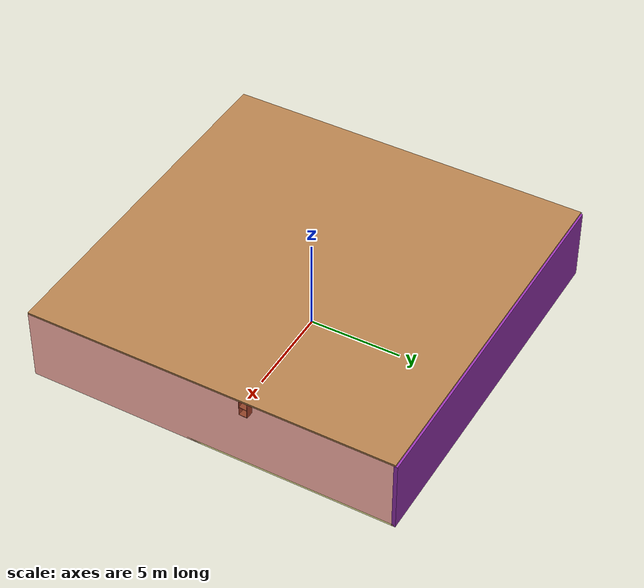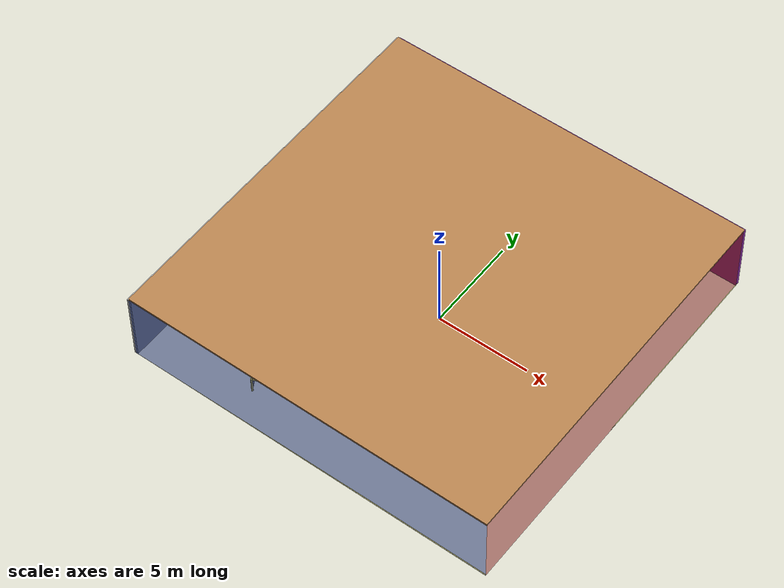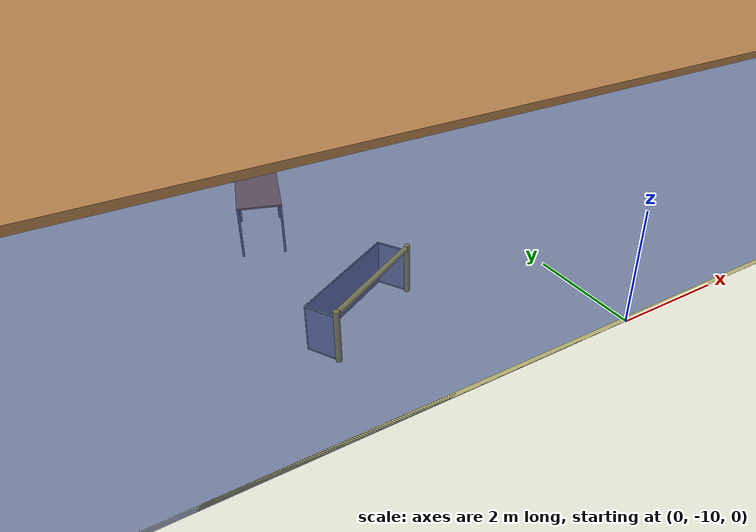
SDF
<sdf version="1.4">
 <world name="default">
  <physics type="ode">
   <max_step_size>0.001</max_step_size>
   <real_time_factor>1</real_time_factor>
   <real_time_update_rate>1000</real_time_update_rate>
   <gravity>0 0 -9.8</gravity>
  </physics>
  <scene><ambient>0.4 0.4 0.4 1</ambient><background>0.7 0.7 0.7 1</background><shadows>1</shadows></scene>
  <model name="Surrounding">
   <static>1</static>
   <link name="Ceiling">
    <collision name="Ceiling_Collision"><geometry><box><size>20 20 0.1</size></box></geometry></collision>
    <visual name="Ceiling_Visual">
     <geometry><box><size>20 20 0.1</size></box></geometry>
     <material>
      <script><uri>file://media/materials/scripts/gazebo.material</uri><name>Gazebo/Wood</name></script>
     </material>
    </visual>
    <pose>0 0 4.05 0 0 0</pose>
   </link>
   <link name="Wall_South">
    <collision name="Wall_South_Collision">
     <geometry><box><size>20 0 4</size></box></geometry>
     <pose>0 0 2 0 -0 0</pose>
    </collision>
    <visual name="Wall_South_Visual">
     <pose>0 0 2 0 -0 0</pose>
     <geometry><box><size>20 0 4</size></box></geometry>
     <material>
      <script><uri>file://media/materials/scripts/gazebo.material</uri><name>Gazebo/BlueTransparent</name></script>
     </material>
    </visual>
    <velocity_decay><linear>0</linear><angular>0</angular></velocity_decay>
    <pose>0 -10 0 0 -0 0</pose>
   </link>
   <link name="Wall_East">
    <collision name="Wall_21_Collision">
     <geometry><box><size>20 0 4</size></box></geometry>
     <pose>0 0 2 0 -0 0</pose>
    </collision>
    <visual name="Wall_21_Visual">
     <pose>0 0 2 0 -0 0</pose>
     <geometry><box><size>20 0 4</size></box></geometry>
     <material>
      <script><uri>file://media/materials/scripts/gazebo.material</uri><name>Gazebo/RedTransparent</name></script>
     </material>
    </visual>
    <velocity_decay><linear>0</linear><angular>0</angular></velocity_decay>
    <pose>10 0 0 0 -0 1.5708</pose>
   </link>
   <link name="Wall_North">
    <collision name="Wall_22_Collision">
     <geometry><box><size>20 0.2 4</size></box></geometry>
     <pose>0 0 2 0 -0 0</pose>
    </collision>
    <visual name="Wall_22_Visual">
     <pose>0 0 2 0 -0 0</pose>
     <geometry><box><size>20 0.2 4</size></box></geometry>
     <material>
      <script><uri>file://media/materials/scripts/gazebo.material</uri><name>Gazebo/Purple</name></script>
     </material>
    </visual>
    <velocity_decay><linear>0</linear><angular>0</angular></velocity_decay>
    <pose>0 10 0 0 -0 0</pose>
   </link>
   <link name="Wall_West">
    <collision name="Wall_23_Collision">
     <geometry><box><size>20 0.2 4</size></box></geometry>
     <pose>0 0 2 0 -0 0</pose>
    </collision>
    <visual name="Wall_23_Visual">
     <pose>0 0 2 0 -0 0</pose>
     <geometry><box><size>20 0.2 4</size></box></geometry>
     <material>
      <script><uri>file://media/materials/scripts/gazebo.material</uri><name>Gazebo/CloudySky</name></script>
     </material>
    </visual>
    <velocity_decay><linear>0</linear><angular>0</angular></velocity_decay>
    <pose>-10 0 0 0 0 -1.5708</pose>
   </link>
   <link name="Ground_link">
    <collision name="collision">
     <pose>0 0 .05 0 -0 0</pose>
     <geometry><box><size>20 20 0.1</size></box></geometry>
    </collision>
    <visual name="visual">
     <pose>0 0 .05 0 -0 0</pose>
     <geometry><box><size>20 20 0.1</size></box></geometry>
     <material>
      <script>
       <uri>file://media/materials/scripts/gazebo.material</uri>
       <name>Gazebo/YellowTransparent</name>
      </script>
     </material>
    </visual>
   </link>
   <static>1</static>
  </model>
  <spherical_coordinates>
   <surface_model>EARTH_WGS84</surface_model>
   <latitude_deg>0</latitude_deg>
   <longitude_deg>0</longitude_deg>
   <elevation>0</elevation>
   <heading_deg>0</heading_deg>
  </spherical_coordinates>
  <light name="lightball_0" type="diffuse">
   <diffuse>0.8 0.8 0.8 1</diffuse>
   <specular>0.2 0.2 0.2 1</specular>
   <attenuation>
    <range>100</range>
    <constant>0.7</constant>
    <linear>0.01</linear>
    <quadratic>0.001</quadratic>
   </attenuation>
   <direction>-0.5 0.1 -0.9</direction>
   <pose>-8.7485365639 6.96695995797 2.57042910393 0 0 0</pose>
  </light>
  <light name="lightball_1" type="diffuse">
   <diffuse>0.8 0.8 0.8 1</diffuse>
   <specular>0.2 0.2 0.2 1</specular>
   <attenuation>
    <range>100</range>
    <constant>0.7</constant>
    <linear>0.01</linear>
    <quadratic>0.001</quadratic>
   </attenuation>
   <direction>-0.5 0.1 -0.9</direction>
   <pose>8.06281182706 6.35495322519 2.47886258745 0 0 0</pose>
  </light>
  <light name="lightball_2" type="diffuse">
   <diffuse>0.8 0.8 0.8 1</diffuse>
   <specular>0.2 0.2 0.2 1</specular>
   <attenuation>
    <range>100</range>
    <constant>0.7</constant>
    <linear>0.01</linear>
    <quadratic>0.001</quadratic>
   </attenuation>
   <direction>-0.5 0.1 -0.9</direction>
   <pose>-1.74514071256 5.94514601653 1.76043744622 0 0 0</pose>
  </light>
  <light name="lightball_3" type="diffuse">
   <diffuse>0.8 0.8 0.8 1</diffuse>
   <specular>0.2 0.2 0.2 1</specular>
   <attenuation>
    <range>100</range>
    <constant>0.7</constant>
    <linear>0.01</linear>
    <quadratic>0.001</quadratic>
   </attenuation>
   <direction>-0.5 0.1 -0.9</direction>
   <pose>6.07313258328 1.77608162339 3.17388197642 0 0 0</pose>
  </light>
  <light name="lightball_4" type="diffuse">
   <diffuse>0.8 0.8 0.8 1</diffuse>
   <specular>0.2 0.2 0.2 1</specular>
   <attenuation>
    <range>100</range>
    <constant>0.7</constant>
    <linear>0.01</linear>
    <quadratic>0.001</quadratic>
   </attenuation>
   <direction>-0.5 0.1 -0.9</direction>
   <pose>-5.91933998854 0.539486157617 1.40543178742 0 0 0</pose>
  </light>
  <light name="lightball_5" type="diffuse">
   <diffuse>0.8 0.8 0.8 1</diffuse>
   <specular>0.2 0.2 0.2 1</specular>
   <attenuation>
    <range>100</range>
    <constant>0.7</constant>
    <linear>0.01</linear>
    <quadratic>0.001</quadratic>
   </attenuation>
   <direction>-0.5 0.1 -0.9</direction>
   <pose>-9.73895984663 4.04395679952 2.1198496472 0 0 0</pose>
  </light>
  <light name="lightball_6" type="diffuse">
   <diffuse>0.8 0.8 0.8 1</diffuse>
   <specular>0.2 0.2 0.2 1</specular>
   <attenuation>
    <range>100</range>
    <constant>0.7</constant>
    <linear>0.01</linear>
    <quadratic>0.001</quadratic>
   </attenuation>
   <direction>-0.5 0.1 -0.9</direction>
   <pose>1.95502215254 -4.8247723984 2.27447532747 0 0 0</pose>
  </light>
  <light name="lightball_7" type="diffuse">
   <diffuse>0.8 0.8 0.8 1</diffuse>
   <specular>0.2 0.2 0.2 1</specular>
   <attenuation>
    <range>100</range>
    <constant>0.7</constant>
    <linear>0.01</linear>
    <quadratic>0.001</quadratic>
   </attenuation>
   <direction>-0.5 0.1 -0.9</direction>
   <pose>-1.78568329815 4.5292170475 1.506739221 0 0 0</pose>
  </light>
  <light name="lightball_8" type="diffuse">
   <diffuse>0.8 0.8 0.8 1</diffuse>
   <specular>0.2 0.2 0.2 1</specular>
   <attenuation>
    <range>100</range>
    <constant>0.7</constant>
    <linear>0.01</linear>
    <quadratic>0.001</quadratic>
   </attenuation>
   <direction>-0.5 0.1 -0.9</direction>
   <pose>1.67706117499 -5.62869687503 1.83516918793 0 0 0</pose>
  </light>
  <light name="lightball_9" type="diffuse">
   <diffuse>0.8 0.8 0.8 1</diffuse>
   <specular>0.2 0.2 0.2 1</specular>
   <attenuation>
    <range>100</range>
    <constant>0.7</constant>
    <linear>0.01</linear>
    <quadratic>0.001</quadratic>
   </attenuation>
   <direction>-0.5 0.1 -0.9</direction>
   <pose>6.70627390634 -0.609291069178 2.80675489375 0 0 0</pose>
  </light>
  <light name="lightball_10" type="diffuse">
   <diffuse>0.8 0.8 0.8 1</diffuse>
   <specular>0.2 0.2 0.2 1</specular>
   <attenuation>
    <range>100</range>
    <constant>0.7</constant>
    <linear>0.01</linear>
    <quadratic>0.001</quadratic>
   </attenuation>
   <direction>-0.5 0.1 -0.9</direction>
   <pose>9.40761773645 -7.72509531616 2.56352714478 0 0 0</pose>
  </light>
  <light name="lightball_11" type="diffuse">
   <diffuse>0.8 0.8 0.8 1</diffuse>
   <specular>0.2 0.2 0.2 1</specular>
   <attenuation>
    <range>100</range>
    <constant>0.7</constant>
    <linear>0.01</linear>
    <quadratic>0.001</quadratic>
   </attenuation>
   <direction>-0.5 0.1 -0.9</direction>
   <pose>-0.0537251295221 -2.86327370115 2.95644051959 0 0 0</pose>
  </light>
  <include>
   <uri>model://robocup_3Dsim_goal</uri>
   <pose>-3.45219184288 -7.9197056727 0 0 0 2.08751032375</pose>
  </include>
  <include><uri>model://table</uri><pose>-3.9464456424 -4.34507998802 0 0 0 1.24886994247</pose></include>
  <include><uri>model://cabinet</uri><pose>-3.32037881402 3.57205139429 0 0 0 2.49869114553</pose></include>
  <include><uri>model://cabinet</uri><pose>7.22535121744 0.429333297894 0 0 0 3.07812504392</pose></include>
 </world>
</sdf>

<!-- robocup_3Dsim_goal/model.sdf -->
<sdf version="1.5">
  <model name="robocup_3d_goal">
    <static>true</static>
    <link name="left_post">
      <pose>0 1.05 0.45 0 0 0</pose>
      <collision name="collision">
        <geometry>
          <cylinder>
            <radius>0.05</radius>
            <length>0.9</length>
          </cylinder>
        </geometry>
      </collision>
      <visual name="visual">
        <geometry>
          <cylinder>
            <radius>0.05</radius>
            <length>0.9</length>
          </cylinder>
        </geometry>
        <material>
          <script>
            <uri>file://media/materials/scripts/gazebo.material</uri>
            <name>Gazebo/ZincYellow</name>
          </script>
        </material>
      </visual>
    </link>
    <link name="left_support_horiz_lower">
      <pose>0.30 1.05 0.01 0 0 0</pose>
      <collision name="collision">
        <geometry>
          <box>
            <size>0.50 0.02 0.02</size>
          </box>
        </geometry>
      </collision>
      <visual name="visual">
        <geometry>
          <box>
            <size>0.50 0.02 0.02</size>
          </box>
        </geometry>
        <material>
          <script>
            <uri>file://media/materials/scripts/gazebo.material</uri>
            <name>Gazebo/White</name>
          </script>
        </material>
      </visual>
    </link>
    <link name="left_support_horiz_upper">
      <pose>0.30 1.05 0.79 0 0 0</pose>
      <collision name="collision">
        <geometry>
          <box>
            <size>0.50 0.02 0.02</size>
          </box>
        </geometry>
      </collision>
      <visual name="visual">
        <geometry>
          <box>
            <size>0.50 0.02 0.02</size>
          </box>
        </geometry>
        <material>
          <script>
            <uri>file://media/materials/scripts/gazebo.material</uri>
            <name>Gazebo/White</name>
          </script>
        </material>
      </visual>
    </link>
    <link name="left_support_vertical">
      <pose>0.56 1.05 0.4 0 1.5708 0</pose>
      <collision name="collision">
        <geometry>
          <box>
            <size>0.80 0.02 0.02</size>
          </box>
        </geometry>
      </collision>
      <visual name="visual">
        <geometry>
          <box>
            <size>0.80 0.02 0.02</size>
          </box>
        </geometry>
        <material>
          <script>
            <uri>file://media/materials/scripts/gazebo.material</uri>
            <name>Gazebo/White</name>
          </script>
        </material>
      </visual>
    </link>
    <link name="right_support_horiz_lower">
      <pose>0.30 -1.05 0.01 0 0 0</pose>
      <collision name="collision">
        <geometry>
          <box>
            <size>0.50 0.02 0.02</size>
          </box>
        </geometry>
      </collision>
      <visual name="visual">
        <geometry>
          <box>
            <size>0.50 0.02 0.02</size>
          </box>
        </geometry>
        <material>
          <script>
            <uri>file://media/materials/scripts/gazebo.material</uri>
            <name>Gazebo/White</name>
          </script>
        </material>
      </visual>
    </link>
    <link name="right_support_horiz_upper">
      <pose>0.30 -1.05 0.79 0 0 0</pose>
      <collision name="collision">
        <geometry>
          <box>
            <size>0.50 0.02 0.02</size>
          </box>
        </geometry>
      </collision>
      <visual name="visual">
        <geometry>
          <box>
            <size>0.50 0.02 0.02</size>
          </box>
        </geometry>
        <material>
          <script>
            <uri>file://media/materials/scripts/gazebo.material</uri>
            <name>Gazebo/White</name>
          </script>
        </material>
      </visual>
    </link>
    <link name="right_support_vertical">
      <pose>0.56 -1.05 0.4 0 1.5708 0</pose>
      <collision name="collision">
        <geometry>
          <box>
            <size>0.80 0.02 0.02</size>
          </box>
        </geometry>
      </collision>
      <visual name="visual">
        <geometry>
          <box>
            <size>0.80 0.02 0.02</size>
          </box>
        </geometry>
        <material>
          <script>
            <uri>file://media/materials/scripts/gazebo.material</uri>
            <name>Gazebo/White</name>
          </script>
        </material>
      </visual>
    </link>
    <link name="center_support_horiz_lower">
      <pose>0.56 0 0.01 0 1.5708 0</pose>
      <collision name="collision">
        <geometry>
          <box>
            <size>0.02 2.08 0.02</size>
          </box>
        </geometry>
      </collision>
      <visual name="visual">
        <geometry>
          <box>
            <size>0.02 2.08 0.02</size>
          </box>
        </geometry>
        <material>
          <script>
            <uri>file://media/materials/scripts/gazebo.material</uri>
            <name>Gazebo/White</name>
          </script>
        </material>
      </visual>
    </link>
    <link name="center_support_horiz_upper">
      <pose>0.56 0 0.79 0 1.5708 0</pose>
      <collision name="collision">
        <geometry>
          <box>
            <size>0.02 2.08 0.02</size>
          </box>
        </geometry>
      </collision>
      <visual name="visual">
        <geometry>
          <box>
            <size>0.02 2.08 0.02</size>
          </box>
        </geometry>
        <material>
          <script>
            <uri>file://media/materials/scripts/gazebo.material</uri>
            <name>Gazebo/White</name>
          </script>
        </material>
      </visual>
    </link>
    <link name="right_post">
      <pose>0 -1.05 0.45 0 0 0</pose>
      <collision name="collision">
        <geometry>
          <cylinder>
            <radius>0.05</radius>
            <length>0.9</length>
          </cylinder>
        </geometry>
      </collision>
      <visual name="visual">
        <geometry>
          <cylinder>
            <radius>0.05</radius>
            <length>0.9</length>
          </cylinder>
        </geometry>
        <material>
          <script>
            <uri>file://media/materials/scripts/gazebo.material</uri>
            <name>Gazebo/ZincYellow</name>
          </script>
        </material>
      </visual>
    </link>
    <link name="crossbar">
      <pose>0 0 0.85 1.57 1.57 0</pose>
      <collision name="collision">
        <geometry>
          <cylinder>
            <radius>0.05</radius>
            <length>2.0</length>
          </cylinder>
        </geometry>
      </collision>
      <visual name="visual">
        <geometry>
          <cylinder>
            <radius>0.05</radius>
            <length>2.0</length>
          </cylinder>
        </geometry>
        <material>
          <script>
            <uri>file://media/materials/scripts/gazebo.material</uri>
            <name>Gazebo/ZincYellow</name>
          </script>
        </material>
      </visual>
    </link>
    <link name="center_net">
      <pose>0.56 0 0.40 0 0 0</pose>
      <collision name="collision">
        <geometry>
          <box>
            <size>0.01 2.1 0.80</size>
          </box>
        </geometry>
      </collision>
      <visual name="visual">
        <geometry>
          <box>
            <size>0.01 2.1 0.80</size>
          </box>
        </geometry>
        <material>
          <script>
            <uri>model://../model_source/models/robocup09_spl_field/materials/scripts/</uri>
            <uri>model://../model_source/models/robocup09_spl_field/materials/textures/</uri>
            <name>RoboCup/Net</name>
          </script>
        </material>
      </visual>
    </link>
    <link name="left_net">
      <pose>0.30 1.05 0.40 0 0 0</pose>
      <collision name="collision">
        <geometry>
          <box>
            <size>0.50 0.01 0.76</size>
          </box>
        </geometry>
      </collision>
      <visual name="visual">
        <geometry>
          <box>
            <size>0.50 0.01 0.76</size>
          </box>
        </geometry>
        <material>
          <script>
            <uri>model://../model_source/models/robocup09_spl_field/materials/scripts/</uri>
            <uri>model://../model_source/models/robocup09_spl_field/materials/textures/</uri>
            <name>RoboCup/Net</name>
          </script>
        </material>
      </visual>
    </link>
    <link name="right_net">
      <pose>0.30 -1.05 0.40 0 0 0</pose>
      <collision name="collision">
        <geometry>
          <box>
            <size>0.50 0.01 0.76</size>
          </box>
        </geometry>
      </collision>
      <visual name="visual">
        <geometry>
          <box>
            <size>0.50 0.01 0.76</size>
          </box>
        </geometry>
        <material>
          <script>
            <uri>model://../model_source/models/robocup09_spl_field/materials/scripts/</uri>
            <uri>model://../model_source/models/robocup09_spl_field/materials/textures/</uri>
            <name>RoboCup/Net</name>
          </script>
        </material>
      </visual>
    </link>
  </model>
</sdf>

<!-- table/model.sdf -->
<sdf version="1.5">
  <model name="table">
    <static>true</static>
    <link name="link">
      <collision name="surface">
        <pose>0 0 1.0 0 0 0</pose>
        <geometry>
          <box>
            <size>1.5 0.8 0.03</size>
          </box>
        </geometry>
        <surface>
          <friction>
            <ode>
              <mu>0.6</mu>
              <mu2>0.6</mu2>
            </ode>
          </friction>
        </surface>
      </collision>
      <visual name="visual1">
        <pose>0 0 1.0 0 0 0</pose>
        <geometry>
          <box>
            <size>1.5 0.8 0.03</size>
          </box>
        </geometry>
        <material>
          <script>
            <uri>model://media/materials/scripts/gazebo.material</uri>
            <name>Gazebo/Wood</name>
          </script>
        </material>
      </visual>
      <collision name="front_left_leg">
        <pose>0.68 0.38 0.5 0 0 0</pose>
        <geometry>
          <cylinder>
            <radius>0.02</radius>
            <length>1.0</length>
          </cylinder>
        </geometry>
      </collision>
      <visual name="front_left_leg">
        <pose>0.68 0.38 0.5 0 0 0</pose>
        <geometry>
          <cylinder>
            <radius>0.02</radius>
            <length>1.0</length>
          </cylinder>
        </geometry>
        <material>
          <script>
            <uri>model://media/materials/scripts/gazebo.material</uri>
            <name>Gazebo/Grey</name>
          </script>
        </material>
      </visual>
      <collision name="front_right_leg">
        <pose>0.68 -0.38 0.5 0 0 0</pose>
        <geometry>
          <cylinder>
            <radius>0.02</radius>
            <length>1.0</length>
          </cylinder>
        </geometry>
      </collision>
      <visual name="front_right_leg">
        <pose>0.68 -0.38 0.5 0 0 0</pose>
        <geometry>
          <cylinder>
            <radius>0.02</radius>
            <length>1.0</length>
          </cylinder>
        </geometry>
        <material>
          <script>
            <uri>model://media/materials/scripts/gazebo.material</uri>
            <name>Gazebo/Grey</name>
          </script>
        </material>
      </visual>
      <collision name="back_right_leg">
        <pose>-0.68 -0.38 0.5 0 0 0</pose>
        <geometry>
          <cylinder>
            <radius>0.02</radius>
            <length>1.0</length>
          </cylinder>
        </geometry>
      </collision>
      <visual name="back_right_leg">
        <pose>-0.68 -0.38 0.5 0 0 0</pose>
        <geometry>
          <cylinder>
            <radius>0.02</radius>
            <length>1.0</length>
          </cylinder>
        </geometry>
        <material>
          <script>
            <uri>model://media/materials/scripts/gazebo.material</uri>
            <name>Gazebo/Grey</name>
          </script>
        </material>
      </visual>
      <collision name="back_left_leg">
        <pose>-0.68 0.38 0.5 0 0 0</pose>
        <geometry>
          <cylinder>
            <radius>0.02</radius>
            <length>1.0</length>
          </cylinder>
        </geometry>
      </collision>
      <visual name="back_left_leg">
        <pose>-0.68 0.38 0.5 0 0 0</pose>
        <geometry>
          <cylinder>
            <radius>0.02</radius>
            <length>1.0</length>
          </cylinder>
        </geometry>
        <material>
          <script>
            <uri>model://media/materials/scripts/gazebo.material</uri>
            <name>Gazebo/Grey</name>
          </script>
        </material>
      </visual>
    </link>
  </model>
</sdf>

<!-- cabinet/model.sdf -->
<sdf version="1.5">
  <model name="cabinet">
    <static>true</static>
    <link name="cabinet_bottom_plate">
      <inertial>
        <pose>0 0 -1 0 0 0</pose>
        <inertia>
          <ixx>2.050000</ixx>
          <ixy>0</ixy>
          <ixz>0</ixz>
          <iyy>2.050000</iyy>
          <iyz>0</iyz>
          <izz>2.050000</izz>
        </inertia>
        <mass>25.000000</mass>
      </inertial>
      <collision name="cabinet_bottom_plate_geom">
        <pose>0 0 0.010000 0 0 0</pose>
        <geometry>
          <box>
            <size>0.450000 0.450000 0.020000</size>
          </box>
        </geometry>
      </collision>
      <visual name="cabinet_bottom_plate_geom_visual">
        <pose>0 0 0.010000 0 0 0</pose>
        <geometry>
          <box>
            <size>0.450000 0.450000 0.020000</size>
          </box>
        </geometry>
        <material>
          <script>
            <uri>model://media/materials/scripts/gazebo.material</uri>
            <name>Gazebo/Wood</name>
          </script>
        </material>
      </visual>
      <collision name="cabinet_bottom_plate_geom_cabinet_back_plate">
        <pose>0.235000 0 0.510000 0 0 0</pose>
        <geometry>
          <box>
            <size>0.020000 0.450000 1.020000</size>
          </box>
        </geometry>
      </collision>
      <visual name="cabinet_bottom_plate_geom_cabinet_back_plate_visual">
        <pose>0.235000 0 0.510000 0 0 0</pose>
        <geometry>
          <box>
            <size>0.020000 0.450000 1.020000</size>
          </box>
        </geometry>
        <material>
          <script>
            <uri>model://media/materials/scripts/gazebo.material</uri>
            <name>Gazebo/Wood</name>
          </script>
        </material>
      </visual>
      <collision name="cabinet_bottom_plate_geom_cabinet_left_plate">
        <pose>0 0.235000 0.510000 0 0 0</pose>
        <geometry>
          <box>
            <size>0.450000 0.020000 1.020000</size>
          </box>
        </geometry>
      </collision>
      <visual name="cabinet_bottom_plate_geom_cabinet_left_plate_visual">
        <pose>0 0.235000 0.510000 0 0 0</pose>
        <geometry>
          <box>
            <size>0.450000 0.020000 1.020000</size>
          </box>
        </geometry>
        <material>
          <script>
            <uri>model://media/materials/scripts/gazebo.material</uri>
            <name>Gazebo/Wood</name>
          </script>
        </material>
      </visual>
      <collision name="cabinet_bottom_plate_geom_cabinet_middle_plate">
        <pose>0 0 0.510000 0 0 0</pose>
        <geometry>
          <box>
            <size>0.450000 0.450000 0.020000</size>
          </box>
        </geometry>
      </collision>
      <visual name="cabinet_bottom_plate_geom_cabinet_middle_plate_visual">
        <pose>0 0 0.510000 0 0 0</pose>
        <geometry>
          <box>
            <size>0.450000 0.450000 0.020000</size>
          </box>
        </geometry>
        <material>
          <script>
            <uri>model://media/materials/scripts/gazebo.material</uri>
            <name>Gazebo/Wood</name>
          </script>
        </material>
      </visual>
      <collision name="cabinet_bottom_plate_geom_cabinet_right_plate">
        <pose>0 -0.235000 0.510000 0 0 0</pose>
        <geometry>
          <box>
            <size>0.450000 0.020000 1.020000</size>
          </box>
        </geometry>
      </collision>
      <visual name="cabinet_bottom_plate_geom_cabinet_right_plate_visual">
        <pose>0 -0.235000 0.510000 0 0 0</pose>
        <geometry>
          <box>
            <size>0.450000 0.020000 1.020000</size>
          </box>
        </geometry>
        <material>
          <script>
            <uri>model://media/materials/scripts/gazebo.material</uri>
            <name>Gazebo/Wood</name>
          </script>
        </material>
      </visual>
      <collision name="cabinet_bottom_plate_geom_cabinet_top_plate">
        <pose>0 0 1.010000 0 0 0</pose>
        <geometry>
          <box>
            <size>0.450000 0.450000 0.020000</size>
          </box>
        </geometry>
      </collision>
      <visual name="cabinet_bottom_plate_geom_cabinet_top_plate_visual">
        <pose>0 0 1.010000 0 0 0</pose>
        <geometry>
          <box>
            <size>0.450000 0.450000 0.020000</size>
          </box>
        </geometry>
        <material>
          <script>
            <uri>model://media/materials/scripts/gazebo.material</uri>
            <name>Gazebo/Wood</name>
          </script>
        </material>
      </visual>
    </link>
  </model>
</sdf>
